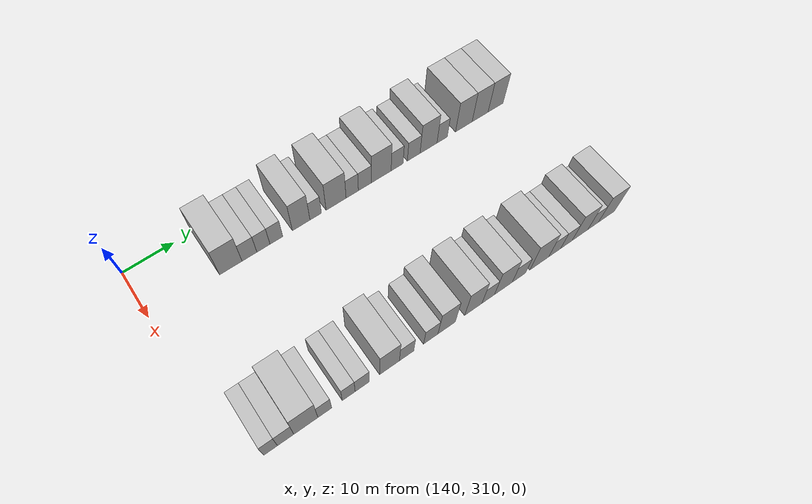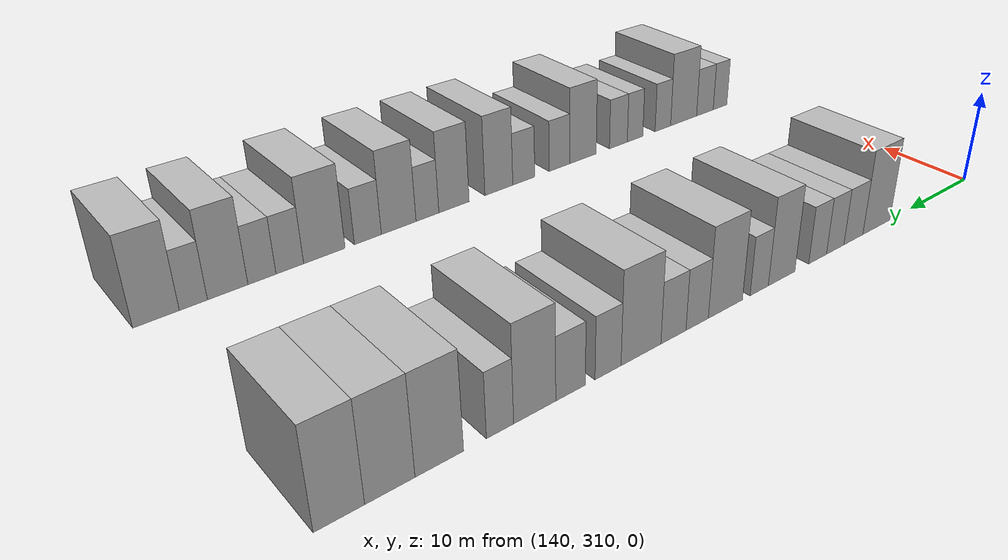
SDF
<sdf version="1.6">
 <world name="default">
  <model name="building_1151">
   <static>1</static>
   <pose>145.0000 325.7932 0 0.000000 0.000000 0.000000</pose>
   <link name="link">
    <pose>0 0 4.50 0 0 0</pose>
    <collision name="collision"><geometry><box><size>10.0000 4.4646 9.0000</size></box></geometry></collision>
    <visual name="visual">
     <cast_shadows>0</cast_shadows>
     <geometry><box><size>10.0000 4.4646 9.0000</size></box></geometry>
     <material>
      <script>
       <uri>model://HANNAS_wall/materials/scripts</uri>
       <uri>model://HANNAS_wall/materials/textures</uri>
       <name>vrc/HANNAS_wall</name>
      </script>
     </material>
    </visual>
   </link>
  </model>
  <model name="building_1152">
   <static>1</static>
   <pose>145.0000 329.5238 0 0.000000 0.000000 0.000000</pose>
   <link name="link">
    <pose>0 0 3.00 0 0 0</pose>
    <collision name="collision"><geometry><box><size>10.0000 2.9966 6.0000</size></box></geometry></collision>
    <visual name="visual">
     <cast_shadows>0</cast_shadows>
     <geometry><box><size>10.0000 2.9966 6.0000</size></box></geometry>
     <material>
      <script>
       <uri>model://HANNAS_wall/materials/scripts</uri>
       <uri>model://HANNAS_wall/materials/textures</uri>
       <name>vrc/HANNAS_wall</name>
      </script>
     </material>
    </visual>
   </link>
  </model>
  <model name="building_1153">
   <static>1</static>
   <pose>145.0000 332.3559 0 0.000000 0.000000 0.000000</pose>
   <link name="link">
    <pose>0 0 3.00 0 0 0</pose>
    <collision name="collision"><geometry><box><size>10.0000 2.6676 6.0000</size></box></geometry></collision>
    <visual name="visual">
     <cast_shadows>0</cast_shadows>
     <geometry><box><size>10.0000 2.6676 6.0000</size></box></geometry>
     <material>
      <script>
       <uri>model://HANNAS_wall/materials/scripts</uri>
       <uri>model://HANNAS_wall/materials/textures</uri>
       <name>vrc/HANNAS_wall</name>
      </script>
     </material>
    </visual>
   </link>
  </model>
  <model name="building_1154">
   <static>1</static>
   <pose>145.0000 335.0086 0 0.000000 0.000000 0.000000</pose>
   <link name="link">
    <pose>0 0 3.00 0 0 0</pose>
    <collision name="collision"><geometry><box><size>10.0000 2.6377 6.0000</size></box></geometry></collision>
    <visual name="visual">
     <cast_shadows>0</cast_shadows>
     <geometry><box><size>10.0000 2.6377 6.0000</size></box></geometry>
     <material>
      <script>
       <uri>model://HANNAS_wall/materials/scripts</uri>
       <uri>model://HANNAS_wall/materials/textures</uri>
       <name>vrc/HANNAS_wall</name>
      </script>
     </material>
    </visual>
   </link>
  </model>
  <model name="building_1155">
   <static>1</static>
   <pose>145.0000 340.1783 0 0.000000 0.000000 0.000000</pose>
   <link name="link">
    <pose>0 0 4.50 0 0 0</pose>
    <collision name="collision"><geometry><box><size>10.0000 3.7019 9.0000</size></box></geometry></collision>
    <visual name="visual">
     <cast_shadows>0</cast_shadows>
     <geometry><box><size>10.0000 3.7019 9.0000</size></box></geometry>
     <material>
      <script>
       <uri>model://HANNAS_wall/materials/scripts</uri>
       <uri>model://HANNAS_wall/materials/textures</uri>
       <name>vrc/HANNAS_wall</name>
      </script>
     </material>
    </visual>
   </link>
  </model>
  <model name="building_1156">
   <static>1</static>
   <pose>145.0000 343.2546 0 0.000000 0.000000 0.000000</pose>
   <link name="link">
    <pose>0 0 3.00 0 0 0</pose>
    <collision name="collision"><geometry><box><size>10.0000 2.4507 6.0000</size></box></geometry></collision>
    <visual name="visual">
     <cast_shadows>0</cast_shadows>
     <geometry><box><size>10.0000 2.4507 6.0000</size></box></geometry>
     <material>
      <script>
       <uri>model://HANNAS_wall/materials/scripts</uri>
       <uri>model://HANNAS_wall/materials/textures</uri>
       <name>vrc/HANNAS_wall</name>
      </script>
     </material>
    </visual>
   </link>
  </model>
  <model name="building_1157">
   <static>1</static>
   <pose>145.0000 347.6488 0 0.000000 0.000000 0.000000</pose>
   <link name="link">
    <pose>0 0 4.50 0 0 0</pose>
    <collision name="collision"><geometry><box><size>10.0000 4.3377 9.0000</size></box></geometry></collision>
    <visual name="visual">
     <cast_shadows>0</cast_shadows>
     <geometry><box><size>10.0000 4.3377 9.0000</size></box></geometry>
     <material>
      <script>
       <uri>model://HANNAS_wall/materials/scripts</uri>
       <uri>model://HANNAS_wall/materials/textures</uri>
       <name>vrc/HANNAS_wall</name>
      </script>
     </material>
    </visual>
   </link>
  </model>
  <model name="building_1158">
   <static>1</static>
   <pose>145.0000 351.1750 0 0.000000 0.000000 0.000000</pose>
   <link name="link">
    <pose>0 0 3.00 0 0 0</pose>
    <collision name="collision"><geometry><box><size>10.0000 2.7147 6.0000</size></box></geometry></collision>
    <visual name="visual">
     <cast_shadows>0</cast_shadows>
     <geometry><box><size>10.0000 2.7147 6.0000</size></box></geometry>
     <material>
      <script>
       <uri>model://HANNAS_wall/materials/scripts</uri>
       <uri>model://HANNAS_wall/materials/textures</uri>
       <name>vrc/HANNAS_wall</name>
      </script>
     </material>
    </visual>
   </link>
  </model>
  <model name="building_1159">
   <static>1</static>
   <pose>145.0000 353.9997 0 0.000000 0.000000 0.000000</pose>
   <link name="link">
    <pose>0 0 3.00 0 0 0</pose>
    <collision name="collision"><geometry><box><size>10.0000 2.9347 6.0000</size></box></geometry></collision>
    <visual name="visual">
     <cast_shadows>0</cast_shadows>
     <geometry><box><size>10.0000 2.9347 6.0000</size></box></geometry>
     <material>
      <script>
       <uri>model://HANNAS_wall/materials/scripts</uri>
       <uri>model://HANNAS_wall/materials/textures</uri>
       <name>vrc/HANNAS_wall</name>
      </script>
     </material>
    </visual>
   </link>
  </model>
  <model name="building_1160">
   <static>1</static>
   <pose>145.0000 357.6816 0 0.000000 0.000000 0.000000</pose>
   <link name="link">
    <pose>0 0 4.50 0 0 0</pose>
    <collision name="collision"><geometry><box><size>10.0000 4.4292 9.0000</size></box></geometry></collision>
    <visual name="visual">
     <cast_shadows>0</cast_shadows>
     <geometry><box><size>10.0000 4.4292 9.0000</size></box></geometry>
     <material>
      <script>
       <uri>model://HANNAS_wall/materials/scripts</uri>
       <uri>model://HANNAS_wall/materials/textures</uri>
       <name>vrc/HANNAS_wall</name>
      </script>
     </material>
    </visual>
   </link>
  </model>
  <model name="building_1161">
   <static>1</static>
   <pose>145.0000 361.2746 0 0.000000 0.000000 0.000000</pose>
   <link name="link">
    <pose>0 0 3.00 0 0 0</pose>
    <collision name="collision"><geometry><box><size>10.0000 2.7567 6.0000</size></box></geometry></collision>
    <visual name="visual">
     <cast_shadows>0</cast_shadows>
     <geometry><box><size>10.0000 2.7567 6.0000</size></box></geometry>
     <material>
      <script>
       <uri>model://HANNAS_wall/materials/scripts</uri>
       <uri>model://HANNAS_wall/materials/textures</uri>
       <name>vrc/HANNAS_wall</name>
      </script>
     </material>
    </visual>
   </link>
  </model>
  <model name="building_1162">
   <static>1</static>
   <pose>145.0000 365.1324 0 0.000000 0.000000 0.000000</pose>
   <link name="link">
    <pose>0 0 3.00 0 0 0</pose>
    <collision name="collision"><geometry><box><size>10.0000 2.9589 6.0000</size></box></geometry></collision>
    <visual name="visual">
     <cast_shadows>0</cast_shadows>
     <geometry><box><size>10.0000 2.9589 6.0000</size></box></geometry>
     <material>
      <script>
       <uri>model://HANNAS_wall/materials/scripts</uri>
       <uri>model://HANNAS_wall/materials/textures</uri>
       <name>vrc/HANNAS_wall</name>
      </script>
     </material>
    </visual>
   </link>
  </model>
  <model name="building_1163">
   <static>1</static>
   <pose>145.0000 368.6163 0 0.000000 0.000000 0.000000</pose>
   <link name="link">
    <pose>0 0 4.50 0 0 0</pose>
    <collision name="collision"><geometry><box><size>10.0000 4.0089 9.0000</size></box></geometry></collision>
    <visual name="visual">
     <cast_shadows>0</cast_shadows>
     <geometry><box><size>10.0000 4.0089 9.0000</size></box></geometry>
     <material>
      <script>
       <uri>model://HANNAS_wall/materials/scripts</uri>
       <uri>model://HANNAS_wall/materials/textures</uri>
       <name>vrc/HANNAS_wall</name>
      </script>
     </material>
    </visual>
   </link>
  </model>
  <model name="building_1164">
   <static>1</static>
   <pose>145.0000 371.8560 0 0.000000 0.000000 0.000000</pose>
   <link name="link">
    <pose>0 0 3.00 0 0 0</pose>
    <collision name="collision"><geometry><box><size>10.0000 2.4705 6.0000</size></box></geometry></collision>
    <visual name="visual">
     <cast_shadows>0</cast_shadows>
     <geometry><box><size>10.0000 2.4705 6.0000</size></box></geometry>
     <material>
      <script>
       <uri>model://HANNAS_wall/materials/scripts</uri>
       <uri>model://HANNAS_wall/materials/textures</uri>
       <name>vrc/HANNAS_wall</name>
      </script>
     </material>
    </visual>
   </link>
  </model>
  <model name="building_1165">
   <static>1</static>
   <pose>145.0000 377.1210 0 0.000000 0.000000 0.000000</pose>
   <link name="link">
    <pose>0 0 4.50 0 0 0</pose>
    <collision name="collision"><geometry><box><size>10.0000 4.0595 9.0000</size></box></geometry></collision>
    <visual name="visual">
     <cast_shadows>0</cast_shadows>
     <geometry><box><size>10.0000 4.0595 9.0000</size></box></geometry>
     <material>
      <script>
       <uri>model://HANNAS_wall/materials/scripts</uri>
       <uri>model://HANNAS_wall/materials/textures</uri>
       <name>vrc/HANNAS_wall</name>
      </script>
     </material>
    </visual>
   </link>
  </model>
  <model name="building_1166">
   <static>1</static>
   <pose>145.0000 381.1244 0 0.000000 0.000000 0.000000</pose>
   <link name="link">
    <pose>0 0 4.50 0 0 0</pose>
    <collision name="collision"><geometry><box><size>10.0000 3.9473 9.0000</size></box></geometry></collision>
    <visual name="visual">
     <cast_shadows>0</cast_shadows>
     <geometry><box><size>10.0000 3.9473 9.0000</size></box></geometry>
     <material>
      <script>
       <uri>model://HANNAS_wall/materials/scripts</uri>
       <uri>model://HANNAS_wall/materials/textures</uri>
       <name>vrc/HANNAS_wall</name>
      </script>
     </material>
    </visual>
   </link>
  </model>
  <model name="building_1167">
   <static>1</static>
   <pose>145.0000 384.9971 0 0.000000 0.000000 0.000000</pose>
   <link name="link">
    <pose>0 0 4.50 0 0 0</pose>
    <collision name="collision"><geometry><box><size>10.0000 3.7981 9.0000</size></box></geometry></collision>
    <visual name="visual">
     <cast_shadows>0</cast_shadows>
     <geometry><box><size>10.0000 3.7981 9.0000</size></box></geometry>
     <material>
      <script>
       <uri>model://HANNAS_wall/materials/scripts</uri>
       <uri>model://HANNAS_wall/materials/textures</uri>
       <name>vrc/HANNAS_wall</name>
      </script>
     </material>
    </visual>
   </link>
  </model>
  <model name="building_1376">
   <static>1</static>
   <pose>175.0000 315.6560 0 0.000000 0.000000 0.000000</pose>
   <link name="link">
    <pose>0 0 3.00 0 0 0</pose>
    <collision name="collision"><geometry><box><size>10.0000 2.4643 6.0000</size></box></geometry></collision>
    <visual name="visual">
     <cast_shadows>0</cast_shadows>
     <geometry><box><size>10.0000 2.4643 6.0000</size></box></geometry>
     <material>
      <script>
       <uri>model://HANNAS_wall/materials/scripts</uri>
       <uri>model://HANNAS_wall/materials/textures</uri>
       <name>vrc/HANNAS_wall</name>
      </script>
     </material>
    </visual>
   </link>
  </model>
  <model name="building_1377">
   <static>1</static>
   <pose>175.0000 318.3628 0 0.000000 0.000000 0.000000</pose>
   <link name="link">
    <pose>0 0 3.00 0 0 0</pose>
    <collision name="collision"><geometry><box><size>10.0000 2.9494 6.0000</size></box></geometry></collision>
    <visual name="visual">
     <cast_shadows>0</cast_shadows>
     <geometry><box><size>10.0000 2.9494 6.0000</size></box></geometry>
     <material>
      <script>
       <uri>model://HANNAS_wall/materials/scripts</uri>
       <uri>model://HANNAS_wall/materials/textures</uri>
       <name>vrc/HANNAS_wall</name>
      </script>
     </material>
    </visual>
   </link>
  </model>
  <model name="building_1378">
   <static>1</static>
   <pose>175.0000 322.0578 0 0.000000 0.000000 0.000000</pose>
   <link name="link">
    <pose>0 0 4.50 0 0 0</pose>
    <collision name="collision"><geometry><box><size>10.0000 4.4406 9.0000</size></box></geometry></collision>
    <visual name="visual">
     <cast_shadows>0</cast_shadows>
     <geometry><box><size>10.0000 4.4406 9.0000</size></box></geometry>
     <material>
      <script>
       <uri>model://HANNAS_wall/materials/scripts</uri>
       <uri>model://HANNAS_wall/materials/textures</uri>
       <name>vrc/HANNAS_wall</name>
      </script>
     </material>
    </visual>
   </link>
  </model>
  <model name="building_1379">
   <static>1</static>
   <pose>175.0000 325.5695 0 0.000000 0.000000 0.000000</pose>
   <link name="link">
    <pose>0 0 3.00 0 0 0</pose>
    <collision name="collision"><geometry><box><size>10.0000 2.5826 6.0000</size></box></geometry></collision>
    <visual name="visual">
     <cast_shadows>0</cast_shadows>
     <geometry><box><size>10.0000 2.5826 6.0000</size></box></geometry>
     <material>
      <script>
       <uri>model://HANNAS_wall/materials/scripts</uri>
       <uri>model://HANNAS_wall/materials/textures</uri>
       <name>vrc/HANNAS_wall</name>
      </script>
     </material>
    </visual>
   </link>
  </model>
  <model name="building_1380">
   <static>1</static>
   <pose>175.0000 330.0883 0 0.000000 0.000000 0.000000</pose>
   <link name="link">
    <pose>0 0 3.00 0 0 0</pose>
    <collision name="collision"><geometry><box><size>10.0000 2.4551 6.0000</size></box></geometry></collision>
    <visual name="visual">
     <cast_shadows>0</cast_shadows>
     <geometry><box><size>10.0000 2.4551 6.0000</size></box></geometry>
     <material>
      <script>
       <uri>model://HANNAS_wall/materials/scripts</uri>
       <uri>model://HANNAS_wall/materials/textures</uri>
       <name>vrc/HANNAS_wall</name>
      </script>
     </material>
    </visual>
   </link>
  </model>
  <model name="building_1381">
   <static>1</static>
   <pose>175.0000 332.7002 0 0.000000 0.000000 0.000000</pose>
   <link name="link">
    <pose>0 0 3.00 0 0 0</pose>
    <collision name="collision"><geometry><box><size>10.0000 2.7685 6.0000</size></box></geometry></collision>
    <visual name="visual">
     <cast_shadows>0</cast_shadows>
     <geometry><box><size>10.0000 2.7685 6.0000</size></box></geometry>
     <material>
      <script>
       <uri>model://HANNAS_wall/materials/scripts</uri>
       <uri>model://HANNAS_wall/materials/textures</uri>
       <name>vrc/HANNAS_wall</name>
      </script>
     </material>
    </visual>
   </link>
  </model>
  <model name="building_1382">
   <static>1</static>
   <pose>175.0000 338.0383 0 0.000000 0.000000 0.000000</pose>
   <link name="link">
    <pose>0 0 4.50 0 0 0</pose>
    <collision name="collision"><geometry><box><size>10.0000 3.9079 9.0000</size></box></geometry></collision>
    <visual name="visual">
     <cast_shadows>0</cast_shadows>
     <geometry><box><size>10.0000 3.9079 9.0000</size></box></geometry>
     <material>
      <script>
       <uri>model://HANNAS_wall/materials/scripts</uri>
       <uri>model://HANNAS_wall/materials/textures</uri>
       <name>vrc/HANNAS_wall</name>
      </script>
     </material>
    </visual>
   </link>
  </model>
  <model name="building_1383">
   <static>1</static>
   <pose>175.0000 341.4472 0 0.000000 0.000000 0.000000</pose>
   <link name="link">
    <pose>0 0 3.00 0 0 0</pose>
    <collision name="collision"><geometry><box><size>10.0000 2.9099 6.0000</size></box></geometry></collision>
    <visual name="visual">
     <cast_shadows>0</cast_shadows>
     <geometry><box><size>10.0000 2.9099 6.0000</size></box></geometry>
     <material>
      <script>
       <uri>model://HANNAS_wall/materials/scripts</uri>
       <uri>model://HANNAS_wall/materials/textures</uri>
       <name>vrc/HANNAS_wall</name>
      </script>
     </material>
    </visual>
   </link>
  </model>
  <model name="building_1384">
   <static>1</static>
   <pose>175.0000 346.3842 0 0.000000 0.000000 0.000000</pose>
   <link name="link">
    <pose>0 0 3.00 0 0 0</pose>
    <collision name="collision"><geometry><box><size>10.0000 2.9641 6.0000</size></box></geometry></collision>
    <visual name="visual">
     <cast_shadows>0</cast_shadows>
     <geometry><box><size>10.0000 2.9641 6.0000</size></box></geometry>
     <material>
      <script>
       <uri>model://HANNAS_wall/materials/scripts</uri>
       <uri>model://HANNAS_wall/materials/textures</uri>
       <name>vrc/HANNAS_wall</name>
      </script>
     </material>
    </visual>
   </link>
  </model>
  <model name="building_1385">
   <static>1</static>
   <pose>175.0000 349.6841 0 0.000000 0.000000 0.000000</pose>
   <link name="link">
    <pose>0 0 4.50 0 0 0</pose>
    <collision name="collision"><geometry><box><size>10.0000 3.6358 9.0000</size></box></geometry></collision>
    <visual name="visual">
     <cast_shadows>0</cast_shadows>
     <geometry><box><size>10.0000 3.6358 9.0000</size></box></geometry>
     <material>
      <script>
       <uri>model://HANNAS_wall/materials/scripts</uri>
       <uri>model://HANNAS_wall/materials/textures</uri>
       <name>vrc/HANNAS_wall</name>
      </script>
     </material>
    </visual>
   </link>
  </model>
  <model name="building_1386">
   <static>1</static>
   <pose>175.0000 355.3632 0 0.000000 0.000000 0.000000</pose>
   <link name="link">
    <pose>0 0 4.50 0 0 0</pose>
    <collision name="collision"><geometry><box><size>10.0000 3.7222 9.0000</size></box></geometry></collision>
    <visual name="visual">
     <cast_shadows>0</cast_shadows>
     <geometry><box><size>10.0000 3.7222 9.0000</size></box></geometry>
     <material>
      <script>
       <uri>model://HANNAS_wall/materials/scripts</uri>
       <uri>model://HANNAS_wall/materials/textures</uri>
       <name>vrc/HANNAS_wall</name>
      </script>
     </material>
    </visual>
   </link>
  </model>
  <model name="building_1387">
   <static>1</static>
   <pose>175.0000 358.5764 0 0.000000 0.000000 0.000000</pose>
   <link name="link">
    <pose>0 0 3.00 0 0 0</pose>
    <collision name="collision"><geometry><box><size>10.0000 2.7042 6.0000</size></box></geometry></collision>
    <visual name="visual">
     <cast_shadows>0</cast_shadows>
     <geometry><box><size>10.0000 2.7042 6.0000</size></box></geometry>
     <material>
      <script>
       <uri>model://HANNAS_wall/materials/scripts</uri>
       <uri>model://HANNAS_wall/materials/textures</uri>
       <name>vrc/HANNAS_wall</name>
      </script>
     </material>
    </visual>
   </link>
  </model>
  <model name="building_1388">
   <static>1</static>
   <pose>175.0000 361.9100 0 0.000000 0.000000 0.000000</pose>
   <link name="link">
    <pose>0 0 4.50 0 0 0</pose>
    <collision name="collision"><geometry><box><size>10.0000 3.9631 9.0000</size></box></geometry></collision>
    <visual name="visual">
     <cast_shadows>0</cast_shadows>
     <geometry><box><size>10.0000 3.9631 9.0000</size></box></geometry>
     <material>
      <script>
       <uri>model://HANNAS_wall/materials/scripts</uri>
       <uri>model://HANNAS_wall/materials/textures</uri>
       <name>vrc/HANNAS_wall</name>
      </script>
     </material>
    </visual>
   </link>
  </model>
  <model name="building_1389">
   <static>1</static>
   <pose>175.0000 365.3736 0 0.000000 0.000000 0.000000</pose>
   <link name="link">
    <pose>0 0 3.00 0 0 0</pose>
    <collision name="collision"><geometry><box><size>10.0000 2.9643 6.0000</size></box></geometry></collision>
    <visual name="visual">
     <cast_shadows>0</cast_shadows>
     <geometry><box><size>10.0000 2.9643 6.0000</size></box></geometry>
     <material>
      <script>
       <uri>model://HANNAS_wall/materials/scripts</uri>
       <uri>model://HANNAS_wall/materials/textures</uri>
       <name>vrc/HANNAS_wall</name>
      </script>
     </material>
    </visual>
   </link>
  </model>
  <model name="building_1390">
   <static>1</static>
   <pose>175.0000 370.0127 0 0.000000 0.000000 0.000000</pose>
   <link name="link">
    <pose>0 0 4.50 0 0 0</pose>
    <collision name="collision"><geometry><box><size>10.0000 4.3138 9.0000</size></box></geometry></collision>
    <visual name="visual">
     <cast_shadows>0</cast_shadows>
     <geometry><box><size>10.0000 4.3138 9.0000</size></box></geometry>
     <material>
      <script>
       <uri>model://HANNAS_wall/materials/scripts</uri>
       <uri>model://HANNAS_wall/materials/textures</uri>
       <name>vrc/HANNAS_wall</name>
      </script>
     </material>
    </visual>
   </link>
  </model>
  <model name="building_1391">
   <static>1</static>
   <pose>175.0000 373.5505 0 0.000000 0.000000 0.000000</pose>
   <link name="link">
    <pose>0 0 3.00 0 0 0</pose>
    <collision name="collision"><geometry><box><size>10.0000 2.7620 6.0000</size></box></geometry></collision>
    <visual name="visual">
     <cast_shadows>0</cast_shadows>
     <geometry><box><size>10.0000 2.7620 6.0000</size></box></geometry>
     <material>
      <script>
       <uri>model://HANNAS_wall/materials/scripts</uri>
       <uri>model://HANNAS_wall/materials/textures</uri>
       <name>vrc/HANNAS_wall</name>
      </script>
     </material>
    </visual>
   </link>
  </model>
  <model name="building_1392">
   <static>1</static>
   <pose>175.0000 376.2844 0 0.000000 0.000000 0.000000</pose>
   <link name="link">
    <pose>0 0 3.00 0 0 0</pose>
    <collision name="collision"><geometry><box><size>10.0000 2.7057 6.0000</size></box></geometry></collision>
    <visual name="visual">
     <cast_shadows>0</cast_shadows>
     <geometry><box><size>10.0000 2.7057 6.0000</size></box></geometry>
     <material>
      <script>
       <uri>model://HANNAS_wall/materials/scripts</uri>
       <uri>model://HANNAS_wall/materials/textures</uri>
       <name>vrc/HANNAS_wall</name>
      </script>
     </material>
    </visual>
   </link>
  </model>
  <model name="building_1393">
   <static>1</static>
   <pose>175.0000 379.5157 0 0.000000 0.000000 0.000000</pose>
   <link name="link">
    <pose>0 0 4.50 0 0 0</pose>
    <collision name="collision"><geometry><box><size>10.0000 3.7568 9.0000</size></box></geometry></collision>
    <visual name="visual">
     <cast_shadows>0</cast_shadows>
     <geometry><box><size>10.0000 3.7568 9.0000</size></box></geometry>
     <material>
      <script>
       <uri>model://HANNAS_wall/materials/scripts</uri>
       <uri>model://HANNAS_wall/materials/textures</uri>
       <name>vrc/HANNAS_wall</name>
      </script>
     </material>
    </visual>
   </link>
  </model>
  <model name="building_1394">
   <static>1</static>
   <pose>175.0000 382.6516 0 0.000000 0.000000 0.000000</pose>
   <link name="link">
    <pose>0 0 3.00 0 0 0</pose>
    <collision name="collision"><geometry><box><size>10.0000 2.5151 6.0000</size></box></geometry></collision>
    <visual name="visual">
     <cast_shadows>0</cast_shadows>
     <geometry><box><size>10.0000 2.5151 6.0000</size></box></geometry>
     <material>
      <script>
       <uri>model://HANNAS_wall/materials/scripts</uri>
       <uri>model://HANNAS_wall/materials/textures</uri>
       <name>vrc/HANNAS_wall</name>
      </script>
     </material>
    </visual>
   </link>
  </model>
  <model name="building_1395">
   <static>1</static>
   <pose>175.0000 385.9050 0 0.000000 0.000000 0.000000</pose>
   <link name="link">
    <pose>0 0 4.50 0 0 0</pose>
    <collision name="collision"><geometry><box><size>10.0000 3.9916 9.0000</size></box></geometry></collision>
    <visual name="visual">
     <cast_shadows>0</cast_shadows>
     <geometry><box><size>10.0000 3.9916 9.0000</size></box></geometry>
     <material>
      <script>
       <uri>model://HANNAS_wall/materials/scripts</uri>
       <uri>model://HANNAS_wall/materials/textures</uri>
       <name>vrc/HANNAS_wall</name>
      </script>
     </material>
    </visual>
   </link>
  </model>
 </world>
</sdf>
